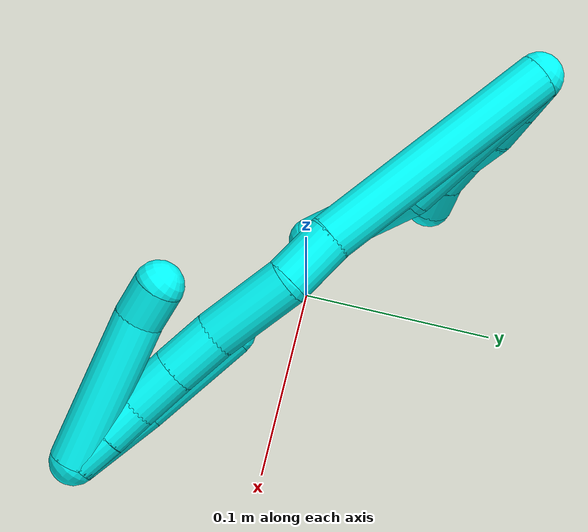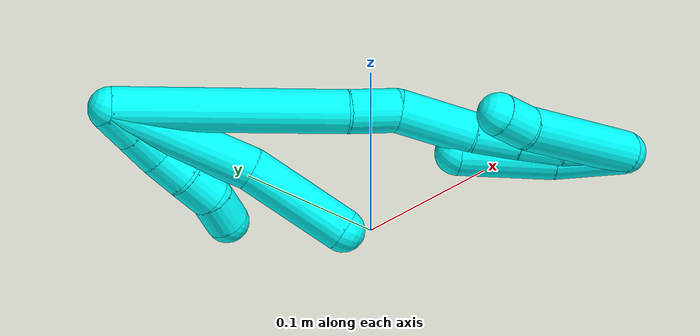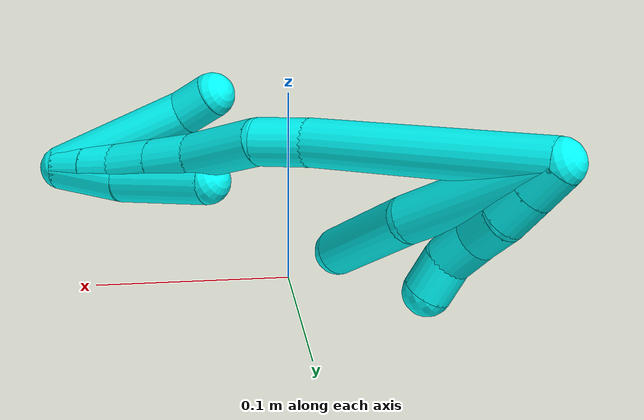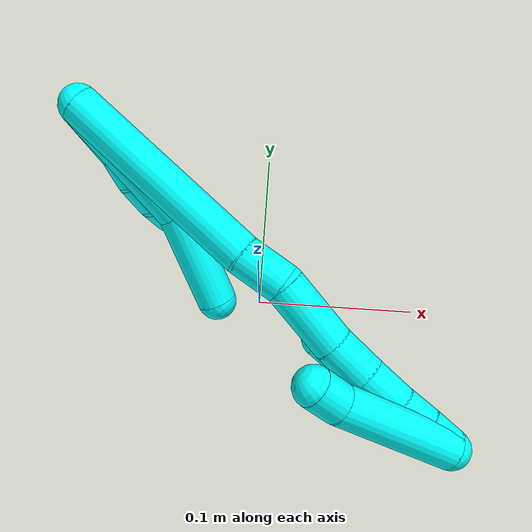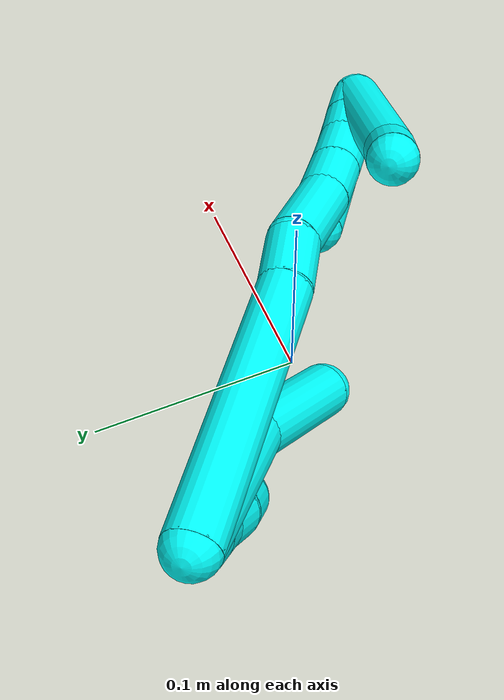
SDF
<sdf version="1.7">
 <world name="default">
  <model name="photoneo_s_sensor">
   <static>1</static>
   <pose>0 0 2 1.57079 1.57079 3.14159</pose>
   <link name="link">
    <inertial><mass>0.1</mass></inertial>
    <sensor name="sensor" type="depth">
     <update_rate>30</update_rate>
     <camera>
      <horizontal_fov>1.22</horizontal_fov>
      <image><width>1920</width><height>1200</height><format>B8G8R8</format></image>
      <clip><near>0.1</near><far>4</far></clip>
      <depth_camera><output>points</output></depth_camera>
     </camera>
     <plugin name="camera_plugin" filename="libgazebo_ros_depth_camera.so">
      <baseline>0.2</baseline>
      <alwaysOn>1</alwaysOn>
      <updateRate>0.0</updateRate>
      <cameraName>camera_ir</cameraName>
      <imageTopicName>/camera/color/image_raw</imageTopicName>
      <cameraInfoTopicName>/camera/color/camera_info</cameraInfoTopicName>
      <depthImageTopicName>/camera/depth/image_raw</depthImageTopicName>
      <depthImageCameraInfoTopicName>/camera/depth/camera_info</depthImageCameraInfoTopicName>
      <pointCloudTopicName>/camera/depth/points</pointCloudTopicName>
      <frameName>fr_optical</frameName>
      <pointCloudCutoff>0.1</pointCloudCutoff>
      <pointCloudCutoffMax>2.0</pointCloudCutoffMax>
      <distortionK1>0</distortionK1>
      <distortionK2>0</distortionK2>
      <distortionK3>0</distortionK3>
      <distortionT1>0</distortionT1>
      <distortionT2>0</distortionT2>
      <CxPrime>0</CxPrime>
      <Cx>0</Cx>
      <Cy>0</Cy>
      <focalLength>0</focalLength>
      <hackBaseline>0</hackBaseline>
     </plugin>
    </sensor>
   </link>
  </model>
  <model name="bin">
   <static>1</static>
   <link name="bottom">
    <collision name="collision-bottom">
     <pose>0 0 -0.01 0 -0 0</pose>
     <geometry><box><size>0.8 0.6 0.02</size></box></geometry>
     <surface>
      <friction><ode><mu>100</mu><mu2>100</mu2></ode></friction>
      <contact><collide_bitmask>65535</collide_bitmask></contact>
     </surface>
    </collision>
   </link>
   <link name="west_wall">
    <collision name="collision-west_wall">
     <pose>-0.41 0 0.1 0 -0 0</pose>
     <geometry><box><size>0.02 0.6 0.2</size></box></geometry>
     <surface>
      <friction><ode><mu>100</mu><mu2>100</mu2></ode></friction>
      <contact><collide_bitmask>65535</collide_bitmask></contact>
     </surface>
    </collision>
   </link>
   <link name="east_wall">
    <collision name="collision-east_wall">
     <pose>0.41 0 0.1 0 -0 0</pose>
     <geometry><box><size>0.02 0.6 0.2</size></box></geometry>
     <surface>
      <friction><ode><mu>100</mu><mu2>100</mu2></ode></friction>
      <contact><collide_bitmask>65535</collide_bitmask></contact>
     </surface>
    </collision>
   </link>
   <link name="south_wall">
    <collision name="collision-south_wall">
     <pose>0 -0.31 0.1 0 -0 0</pose>
     <geometry><box><size>0.8 0.02 0.2</size></box></geometry>
     <surface>
      <friction><ode><mu>100</mu><mu2>100</mu2></ode></friction>
      <contact><collide_bitmask>65535</collide_bitmask></contact>
     </surface>
    </collision>
   </link>
   <link name="north_wall">
    <collision name="collision-north_wall">
     <pose>0 0.31 0.1 0 -0 0</pose>
     <geometry><box><size>0.8 0.02 0.2</size></box></geometry>
     <surface>
      <friction><ode><mu>100</mu><mu2>100</mu2></ode></friction>
      <contact><collide_bitmask>65535</collide_bitmask></contact>
     </surface>
    </collision>
   </link>
  </model>
  <model name="3">
   <static>0</static>
   <link name="3">
    <collision name="collision-cylinder-e_1_2_8">
     <pose>-0.000261 -0.000157 -0.043616 3.13799 -0.005986 -2.05832</pose>
     <geometry><cylinder><radius>0.0125</radius><length>0.087234</length></cylinder></geometry>
     <surface>
      <friction><ode><mu>1.16</mu><mu2>1.16</mu2><slip1>0</slip1><slip2>0</slip2></ode></friction>
      <contact><ode><kp>1e+06</kp><kd>1</kd><max_vel>0</max_vel><min_depth>0.001</min_depth></ode></contact>
     </surface>
    </collision>
    <visual name="visual-cylinder-e_1_2_8">
     <pose>-0.000261 -0.000157 -0.043616 3.13799 -0.005986 -2.05832</pose>
     <geometry><cylinder><radius>0.0125</radius><length>0.087234</length></cylinder></geometry>
     <material><ambient>0.003922 1 0.996078 1</ambient></material>
    </visual>
    <collision name="collision-cylinder-e_2_8_6">
     <pose>-0.008716 -0.005567 -0.117068 2.9673 -0.264144 -1.97813</pose>
     <geometry><cylinder><radius>0.0125</radius><length>0.062766</length></cylinder></geometry>
     <surface>
      <friction><ode><mu>1.16</mu><mu2>1.16</mu2><slip1>0</slip1><slip2>0</slip2></ode></friction>
      <contact><ode><kp>1e+06</kp><kd>1</kd><max_vel>0</max_vel><min_depth>0.001</min_depth></ode></contact>
     </surface>
    </collision>
    <visual name="visual-cylinder-e_2_8_6">
     <pose>-0.008716 -0.005567 -0.117068 2.9673 -0.264144 -1.97813</pose>
     <geometry><cylinder><radius>0.0125</radius><length>0.062766</length></cylinder></geometry>
     <material><ambient>0.003922 1 0.996078 1</ambient></material>
    </visual>
    <collision name="collision-cylinder-e_1_2_9">
     <pose>-0.002553 0.002681 -0.00929 -2.86066 -0.258107 1.48513</pose>
     <geometry><cylinder><radius>0.0125</radius><length>0.02</length></cylinder></geometry>
     <surface>
      <friction><ode><mu>1.16</mu><mu2>1.16</mu2><slip1>0</slip1><slip2>0</slip2></ode></friction>
      <contact><ode><kp>1e+06</kp><kd>1</kd><max_vel>0</max_vel><min_depth>0.001</min_depth></ode></contact>
     </surface>
    </collision>
    <visual name="visual-cylinder-e_1_2_9">
     <pose>-0.002553 0.002681 -0.00929 -2.86066 -0.258107 1.48513</pose>
     <geometry><cylinder><radius>0.0125</radius><length>0.02</length></cylinder></geometry>
     <material><ambient>0.003922 1 0.996078 1</ambient></material>
    </visual>
    <collision name="collision-cylinder-e_2_9_10">
     <pose>-0.007636 0.008039 -0.027876 -2.8611 -0.255924 1.47817</pose>
     <geometry><cylinder><radius>0.0125</radius><length>0.02</length></cylinder></geometry>
     <surface>
      <friction><ode><mu>1.16</mu><mu2>1.16</mu2><slip1>0</slip1><slip2>0</slip2></ode></friction>
      <contact><ode><kp>1e+06</kp><kd>1</kd><max_vel>0</max_vel><min_depth>0.001</min_depth></ode></contact>
     </surface>
    </collision>
    <visual name="visual-cylinder-e_2_9_10">
     <pose>-0.007636 0.008039 -0.027876 -2.8611 -0.255924 1.47817</pose>
     <geometry><cylinder><radius>0.0125</radius><length>0.02</length></cylinder></geometry>
     <material><ambient>0.003922 1 0.996078 1</ambient></material>
    </visual>
    <collision name="collision-cylinder-e_3_10_11">
     <pose>-0.012956 0.011212 -0.046763 -3.09009 -0.282564 2.7833</pose>
     <geometry><cylinder><radius>0.0125</radius><length>0.02</length></cylinder></geometry>
     <surface>
      <friction><ode><mu>1.16</mu><mu2>1.16</mu2><slip1>0</slip1><slip2>0</slip2></ode></friction>
      <contact><ode><kp>1e+06</kp><kd>1</kd><max_vel>0</max_vel><min_depth>0.001</min_depth></ode></contact>
     </surface>
    </collision>
    <visual name="visual-cylinder-e_3_10_11">
     <pose>-0.012956 0.011212 -0.046763 -3.09009 -0.282564 2.7833</pose>
     <geometry><cylinder><radius>0.0125</radius><length>0.02</length></cylinder></geometry>
     <material><ambient>0.003922 1 0.996078 1</ambient></material>
    </visual>
    <collision name="collision-cylinder-e_4_11_12">
     <pose>-0.017662 0.013881 -0.065924 -2.91814 -0.192964 1.4236</pose>
     <geometry><cylinder><radius>0.0125</radius><length>0.02</length></cylinder></geometry>
     <surface>
      <friction><ode><mu>1.16</mu><mu2>1.16</mu2><slip1>0</slip1><slip2>0</slip2></ode></friction>
      <contact><ode><kp>1e+06</kp><kd>1</kd><max_vel>0</max_vel><min_depth>0.001</min_depth></ode></contact>
     </surface>
    </collision>
    <visual name="visual-cylinder-e_4_11_12">
     <pose>-0.017662 0.013881 -0.065924 -2.91814 -0.192964 1.4236</pose>
     <geometry><cylinder><radius>0.0125</radius><length>0.02</length></cylinder></geometry>
     <material><ambient>0.003922 1 0.996078 1</ambient></material>
    </visual>
    <collision name="collision-cylinder-e_5_12_5">
     <pose>-0.022597 0.021089 -0.083591 -2.58547 -0.306519 0.992032</pose>
     <geometry><cylinder><radius>0.0125</radius><length>0.02</length></cylinder></geometry>
     <surface>
      <friction><ode><mu>1.16</mu><mu2>1.16</mu2><slip1>0</slip1><slip2>0</slip2></ode></friction>
      <contact><ode><kp>1e+06</kp><kd>1</kd><max_vel>0</max_vel><min_depth>0.001</min_depth></ode></contact>
     </surface>
    </collision>
    <visual name="visual-cylinder-e_5_12_5">
     <pose>-0.022597 0.021089 -0.083591 -2.58547 -0.306519 0.992032</pose>
     <geometry><cylinder><radius>0.0125</radius><length>0.02</length></cylinder></geometry>
     <material><ambient>0.003922 1 0.996078 1</ambient></material>
    </visual>
    <collision name="collision-cylinder-e_1_2_13">
     <pose>0.020221 -0.017416 -0.060261 2.86024 0.311844 1.67503</pose>
     <geometry><cylinder><radius>0.0125</radius><length>0.131812</length></cylinder></geometry>
     <surface>
      <friction><ode><mu>1.16</mu><mu2>1.16</mu2><slip1>0</slip1><slip2>0</slip2></ode></friction>
      <contact><ode><kp>1e+06</kp><kd>1</kd><max_vel>0</max_vel><min_depth>0.001</min_depth></ode></contact>
     </surface>
    </collision>
    <visual name="visual-cylinder-e_1_2_13">
     <pose>0.020221 -0.017416 -0.060261 2.86024 0.311844 1.67503</pose>
     <geometry><cylinder><radius>0.0125</radius><length>0.131812</length></cylinder></geometry>
     <material><ambient>0.003922 1 0.996078 1</ambient></material>
    </visual>
    <collision name="collision-cylinder-e_2_13_14">
     <pose>0.045927 -0.037015 -0.13389 2.9798 0.384738 2.35274</pose>
     <geometry><cylinder><radius>0.0125</radius><length>0.029229</length></cylinder></geometry>
     <surface>
      <friction><ode><mu>1.16</mu><mu2>1.16</mu2><slip1>0</slip1><slip2>0</slip2></ode></friction>
      <contact><ode><kp>1e+06</kp><kd>1</kd><max_vel>0</max_vel><min_depth>0.001</min_depth></ode></contact>
     </surface>
    </collision>
    <visual name="visual-cylinder-e_2_13_14">
     <pose>0.045927 -0.037015 -0.13389 2.9798 0.384738 2.35274</pose>
     <geometry><cylinder><radius>0.0125</radius><length>0.029229</length></cylinder></geometry>
     <material><ambient>0.003922 1 0.996078 1</ambient></material>
    </visual>
    <collision name="collision-cylinder-e_3_14_15">
     <pose>0.052751 -0.042608 -0.169632 2.9903 0.059124 0.743964</pose>
     <geometry><cylinder><radius>0.0125</radius><length>0.045341</length></cylinder></geometry>
     <surface>
      <friction><ode><mu>1.16</mu><mu2>1.16</mu2><slip1>0</slip1><slip2>0</slip2></ode></friction>
      <contact><ode><kp>1e+06</kp><kd>1</kd><max_vel>0</max_vel><min_depth>0.001</min_depth></ode></contact>
     </surface>
    </collision>
    <visual name="visual-cylinder-e_3_14_15">
     <pose>0.052751 -0.042608 -0.169632 2.9903 0.059124 0.743964</pose>
     <geometry><cylinder><radius>0.0125</radius><length>0.045341</length></cylinder></geometry>
     <material><ambient>0.003922 1 0.996078 1</ambient></material>
    </visual>
    <collision name="collision-cylinder-e_4_15_16">
     <pose>0.056619 -0.047892 -0.205237 3.00098 0.186987 1.85326</pose>
     <geometry><cylinder><radius>0.0125</radius><length>0.027203</length></cylinder></geometry>
     <surface>
      <friction><ode><mu>1.16</mu><mu2>1.16</mu2><slip1>0</slip1><slip2>0</slip2></ode></friction>
      <contact><ode><kp>1e+06</kp><kd>1</kd><max_vel>0</max_vel><min_depth>0.001</min_depth></ode></contact>
     </surface>
    </collision>
    <visual name="visual-cylinder-e_4_15_16">
     <pose>0.056619 -0.047892 -0.205237 3.00098 0.186987 1.85326</pose>
     <geometry><cylinder><radius>0.0125</radius><length>0.027203</length></cylinder></geometry>
     <material><ambient>0.003922 1 0.996078 1</ambient></material>
    </visual>
    <collision name="collision-cylinder-e_5_16_17">
     <pose>0.0619 -0.051437 -0.231152 3.01055 0.211886 2.03593</pose>
     <geometry><cylinder><radius>0.0125</radius><length>0.02617</length></cylinder></geometry>
     <surface>
      <friction><ode><mu>1.16</mu><mu2>1.16</mu2><slip1>0</slip1><slip2>0</slip2></ode></friction>
      <contact><ode><kp>1e+06</kp><kd>1</kd><max_vel>0</max_vel><min_depth>0.001</min_depth></ode></contact>
     </surface>
    </collision>
    <visual name="visual-cylinder-e_5_16_17">
     <pose>0.0619 -0.051437 -0.231152 3.01055 0.211886 2.03593</pose>
     <geometry><cylinder><radius>0.0125</radius><length>0.02617</length></cylinder></geometry>
     <material><ambient>0.003922 1 0.996078 1</ambient></material>
    </visual>
    <collision name="collision-cylinder-e_6_17_18">
     <pose>0.067616 -0.054666 -0.253338 2.97908 0.298613 2.1492</pose>
     <geometry><cylinder><radius>0.0125</radius><length>0.020152</length></cylinder></geometry>
     <surface>
      <friction><ode><mu>1.16</mu><mu2>1.16</mu2><slip1>0</slip1><slip2>0</slip2></ode></friction>
      <contact><ode><kp>1e+06</kp><kd>1</kd><max_vel>0</max_vel><min_depth>0.001</min_depth></ode></contact>
     </surface>
    </collision>
    <visual name="visual-cylinder-e_6_17_18">
     <pose>0.067616 -0.054666 -0.253338 2.97908 0.298613 2.1492</pose>
     <geometry><cylinder><radius>0.0125</radius><length>0.020152</length></cylinder></geometry>
     <material><ambient>0.003922 1 0.996078 1</ambient></material>
    </visual>
    <collision name="collision-cylinder-e_7_18_1">
     <pose>0.073347 -0.058052 -0.272325 2.95128 0.278953 1.94741</pose>
     <geometry><cylinder><radius>0.0125</radius><length>0.020094</length></cylinder></geometry>
     <surface>
      <friction><ode><mu>1.16</mu><mu2>1.16</mu2><slip1>0</slip1><slip2>0</slip2></ode></friction>
      <contact><ode><kp>1e+06</kp><kd>1</kd><max_vel>0</max_vel><min_depth>0.001</min_depth></ode></contact>
     </surface>
    </collision>
    <visual name="visual-cylinder-e_7_18_1">
     <pose>0.073347 -0.058052 -0.272325 2.95128 0.278953 1.94741</pose>
     <geometry><cylinder><radius>0.0125</radius><length>0.020094</length></cylinder></geometry>
     <material><ambient>0.003922 1 0.996078 1</ambient></material>
    </visual>
    <collision name="collision-cylinder-e_1_1_19">
     <pose>0.068051 -0.05345 -0.263 -0.329316 -0.385288 0.064802</pose>
     <geometry><cylinder><radius>0.0125</radius><length>0.0429</length></cylinder></geometry>
     <surface>
      <friction><ode><mu>1.16</mu><mu2>1.16</mu2><slip1>0</slip1><slip2>0</slip2></ode></friction>
      <contact><ode><kp>1e+06</kp><kd>1</kd><max_vel>0</max_vel><min_depth>0.001</min_depth></ode></contact>
     </surface>
    </collision>
    <visual name="visual-cylinder-e_1_1_19">
     <pose>0.068051 -0.05345 -0.263 -0.329316 -0.385288 0.064802</pose>
     <geometry><cylinder><radius>0.0125</radius><length>0.0429</length></cylinder></geometry>
     <material><ambient>0.003922 1 0.996078 1</ambient></material>
    </visual>
    <collision name="collision-cylinder-e_2_19_4">
     <pose>0.051702 -0.041306 -0.217475 -0.210794 -0.294541 0.031384</pose>
     <geometry><cylinder><radius>0.0125</radius><length>0.0571</length></cylinder></geometry>
     <surface>
      <friction><ode><mu>1.16</mu><mu2>1.16</mu2><slip1>0</slip1><slip2>0</slip2></ode></friction>
      <contact><ode><kp>1e+06</kp><kd>1</kd><max_vel>0</max_vel><min_depth>0.001</min_depth></ode></contact>
     </surface>
    </collision>
    <visual name="visual-cylinder-e_2_19_4">
     <pose>0.051702 -0.041306 -0.217475 -0.210794 -0.294541 0.031384</pose>
     <geometry><cylinder><radius>0.0125</radius><length>0.0571</length></cylinder></geometry>
     <material><ambient>0.003922 1 0.996078 1</ambient></material>
    </visual>
    <collision name="collision-cylinder-e_1_1_20">
     <pose>0.065824 -0.070738 -0.244717 0.284812 -0.26019 -0.037513</pose>
     <geometry><cylinder><radius>0.0125</radius><length>0.07999</length></cylinder></geometry>
     <surface>
      <friction><ode><mu>1.16</mu><mu2>1.16</mu2><slip1>0</slip1><slip2>0</slip2></ode></friction>
      <contact><ode><kp>1e+06</kp><kd>1</kd><max_vel>0</max_vel><min_depth>0.001</min_depth></ode></contact>
     </surface>
    </collision>
    <visual name="visual-cylinder-e_1_1_20">
     <pose>0.065824 -0.070738 -0.244717 0.284812 -0.26019 -0.037513</pose>
     <geometry><cylinder><radius>0.0125</radius><length>0.07999</length></cylinder></geometry>
     <material><ambient>0.003922 1 0.996078 1</ambient></material>
    </visual>
    <collision name="collision-cylinder-e_2_20_3">
     <pose>0.054882 -0.083846 -0.197898 0.22714 -0.065248 -0.007445</pose>
     <geometry><cylinder><radius>0.0125</radius><length>0.02001</length></cylinder></geometry>
     <surface>
      <friction><ode><mu>1.16</mu><mu2>1.16</mu2><slip1>0</slip1><slip2>0</slip2></ode></friction>
      <contact><ode><kp>1e+06</kp><kd>1</kd><max_vel>0</max_vel><min_depth>0.001</min_depth></ode></contact>
     </surface>
    </collision>
    <visual name="visual-cylinder-e_2_20_3">
     <pose>0.054882 -0.083846 -0.197898 0.22714 -0.065248 -0.007445</pose>
     <geometry><cylinder><radius>0.0125</radius><length>0.02001</length></cylinder></geometry>
     <material><ambient>0.003922 1 0.996078 1</ambient></material>
    </visual>
    <collision name="collision-sphere-3">
     <pose>0.05423 -0.086094 -0.188171 0 -0 0</pose>
     <geometry><sphere><radius>0.0125</radius></sphere></geometry>
     <surface>
      <friction><ode><mu>1.16</mu><mu2>1.16</mu2><slip1>0</slip1><slip2>0</slip2></ode></friction>
      <contact><ode><kp>1e+06</kp><kd>1</kd><max_vel>0</max_vel><min_depth>0.001</min_depth></ode></contact>
     </surface>
    </collision>
    <visual name="visual-sphere-3">
     <pose>0.05423 -0.086094 -0.188171 0 -0 0</pose>
     <geometry><sphere><radius>0.0125</radius></sphere></geometry>
     <material><ambient>0.003922 1 0.996078 1</ambient></material>
    </visual>
    <collision name="collision-sphere-20">
     <pose>0.055534 -0.081597 -0.207626 0 -0 0</pose>
     <geometry><sphere><radius>0.0125</radius></sphere></geometry>
     <surface>
      <friction><ode><mu>1.16</mu><mu2>1.16</mu2><slip1>0</slip1><slip2>0</slip2></ode></friction>
      <contact><ode><kp>1e+06</kp><kd>1</kd><max_vel>0</max_vel><min_depth>0.001</min_depth></ode></contact>
     </surface>
    </collision>
    <visual name="visual-sphere-20">
     <pose>0.055534 -0.081597 -0.207626 0 -0 0</pose>
     <geometry><sphere><radius>0.0125</radius></sphere></geometry>
     <material><ambient>0.003922 1 0.996078 1</ambient></material>
    </visual>
    <collision name="collision-sphere-4">
     <pose>0.043414 -0.035589 -0.190759 0 -0 0</pose>
     <geometry><sphere><radius>0.0125</radius></sphere></geometry>
     <surface>
      <friction><ode><mu>1.16</mu><mu2>1.16</mu2><slip1>0</slip1><slip2>0</slip2></ode></friction>
      <contact><ode><kp>1e+06</kp><kd>1</kd><max_vel>0</max_vel><min_depth>0.001</min_depth></ode></contact>
     </surface>
    </collision>
    <visual name="visual-sphere-4">
     <pose>0.043414 -0.035589 -0.190759 0 -0 0</pose>
     <geometry><sphere><radius>0.0125</radius></sphere></geometry>
     <material><ambient>0.003922 1 0.996078 1</ambient></material>
    </visual>
    <collision name="collision-sphere-11">
     <pose>-0.015744 0.011706 -0.056353 0 -0 0</pose>
     <geometry><sphere><radius>0.0125</radius></sphere></geometry>
     <surface>
      <friction><ode><mu>1.16</mu><mu2>1.16</mu2><slip1>0</slip1><slip2>0</slip2></ode></friction>
      <contact><ode><kp>1e+06</kp><kd>1</kd><max_vel>0</max_vel><min_depth>0.001</min_depth></ode></contact>
     </surface>
    </collision>
    <visual name="visual-sphere-11">
     <pose>-0.015744 0.011706 -0.056353 0 -0 0</pose>
     <geometry><sphere><radius>0.0125</radius></sphere></geometry>
     <material><ambient>0.003922 1 0.996078 1</ambient></material>
    </visual>
    <collision name="collision-sphere-10">
     <pose>-0.010168 0.010718 -0.037172 0 -0 0</pose>
     <geometry><sphere><radius>0.0125</radius></sphere></geometry>
     <surface>
      <friction><ode><mu>1.16</mu><mu2>1.16</mu2><slip1>0</slip1><slip2>0</slip2></ode></friction>
      <contact><ode><kp>1e+06</kp><kd>1</kd><max_vel>0</max_vel><min_depth>0.001</min_depth></ode></contact>
     </surface>
    </collision>
    <visual name="visual-sphere-10">
     <pose>-0.010168 0.010718 -0.037172 0 -0 0</pose>
     <geometry><sphere><radius>0.0125</radius></sphere></geometry>
     <material><ambient>0.003922 1 0.996078 1</ambient></material>
    </visual>
    <collision name="collision-sphere-6">
     <pose>-0.016909 -0.010821 -0.146903 0 -0 0</pose>
     <geometry><sphere><radius>0.0125</radius></sphere></geometry>
     <surface>
      <friction><ode><mu>1.16</mu><mu2>1.16</mu2><slip1>0</slip1><slip2>0</slip2></ode></friction>
      <contact><ode><kp>1e+06</kp><kd>1</kd><max_vel>0</max_vel><min_depth>0.001</min_depth></ode></contact>
     </surface>
    </collision>
    <visual name="visual-sphere-6">
     <pose>-0.016909 -0.010821 -0.146903 0 -0 0</pose>
     <geometry><sphere><radius>0.0125</radius></sphere></geometry>
     <material><ambient>0.003922 1 0.996078 1</ambient></material>
    </visual>
    <collision name="collision-sphere-9">
     <pose>-0.005105 0.005361 -0.018579 0 -0 0</pose>
     <geometry><sphere><radius>0.0125</radius></sphere></geometry>
     <surface>
      <friction><ode><mu>1.16</mu><mu2>1.16</mu2><slip1>0</slip1><slip2>0</slip2></ode></friction>
      <contact><ode><kp>1e+06</kp><kd>1</kd><max_vel>0</max_vel><min_depth>0.001</min_depth></ode></contact>
     </surface>
    </collision>
    <visual name="visual-sphere-9">
     <pose>-0.005105 0.005361 -0.018579 0 -0 0</pose>
     <geometry><sphere><radius>0.0125</radius></sphere></geometry>
     <material><ambient>0.003922 1 0.996078 1</ambient></material>
    </visual>
    <collision name="collision-sphere-2">
     <geometry><sphere><radius>0.0125</radius></sphere></geometry>
     <surface>
      <friction><ode><mu>1.16</mu><mu2>1.16</mu2><slip1>0</slip1><slip2>0</slip2></ode></friction>
      <contact><ode><kp>1e+06</kp><kd>1</kd><max_vel>0</max_vel><min_depth>0.001</min_depth></ode></contact>
     </surface>
    </collision>
    <visual name="visual-sphere-2">
     <geometry><sphere><radius>0.0125</radius></sphere></geometry>
     <material><ambient>0.003922 1 0.996078 1</ambient></material>
    </visual>
    <collision name="collision-sphere-19">
     <pose>0.05999 -0.047022 -0.244191 0 -0 0</pose>
     <geometry><sphere><radius>0.0125</radius></sphere></geometry>
     <surface>
      <friction><ode><mu>1.16</mu><mu2>1.16</mu2><slip1>0</slip1><slip2>0</slip2></ode></friction>
      <contact><ode><kp>1e+06</kp><kd>1</kd><max_vel>0</max_vel><min_depth>0.001</min_depth></ode></contact>
     </surface>
    </collision>
    <visual name="visual-sphere-19">
     <pose>0.05999 -0.047022 -0.244191 0 -0 0</pose>
     <geometry><sphere><radius>0.0125</radius></sphere></geometry>
     <material><ambient>0.003922 1 0.996078 1</ambient></material>
    </visual>
    <collision name="collision-sphere-8">
     <pose>-0.000522 -0.000314 -0.087232 0 -0 0</pose>
     <geometry><sphere><radius>0.0125</radius></sphere></geometry>
     <surface>
      <friction><ode><mu>1.16</mu><mu2>1.16</mu2><slip1>0</slip1><slip2>0</slip2></ode></friction>
      <contact><ode><kp>1e+06</kp><kd>1</kd><max_vel>0</max_vel><min_depth>0.001</min_depth></ode></contact>
     </surface>
    </collision>
    <visual name="visual-sphere-8">
     <pose>-0.000522 -0.000314 -0.087232 0 -0 0</pose>
     <geometry><sphere><radius>0.0125</radius></sphere></geometry>
     <material><ambient>0.003922 1 0.996078 1</ambient></material>
    </visual>
    <collision name="collision-sphere-12">
     <pose>-0.01958 0.016056 -0.075494 0 -0 0</pose>
     <geometry><sphere><radius>0.0125</radius></sphere></geometry>
     <surface>
      <friction><ode><mu>1.16</mu><mu2>1.16</mu2><slip1>0</slip1><slip2>0</slip2></ode></friction>
      <contact><ode><kp>1e+06</kp><kd>1</kd><max_vel>0</max_vel><min_depth>0.001</min_depth></ode></contact>
     </surface>
    </collision>
    <visual name="visual-sphere-12">
     <pose>-0.01958 0.016056 -0.075494 0 -0 0</pose>
     <geometry><sphere><radius>0.0125</radius></sphere></geometry>
     <material><ambient>0.003922 1 0.996078 1</ambient></material>
    </visual>
    <collision name="collision-sphere-5">
     <pose>-0.025614 0.026122 -0.091689 0 -0 0</pose>
     <geometry><sphere><radius>0.0125</radius></sphere></geometry>
     <surface>
      <friction><ode><mu>1.16</mu><mu2>1.16</mu2><slip1>0</slip1><slip2>0</slip2></ode></friction>
      <contact><ode><kp>1e+06</kp><kd>1</kd><max_vel>0</max_vel><min_depth>0.001</min_depth></ode></contact>
     </surface>
    </collision>
    <visual name="visual-sphere-5">
     <pose>-0.025614 0.026122 -0.091689 0 -0 0</pose>
     <geometry><sphere><radius>0.0125</radius></sphere></geometry>
     <material><ambient>0.003922 1 0.996078 1</ambient></material>
    </visual>
    <collision name="collision-sphere-13">
     <pose>0.040442 -0.034833 -0.120521 0 -0 0</pose>
     <geometry><sphere><radius>0.0125</radius></sphere></geometry>
     <surface>
      <friction><ode><mu>1.16</mu><mu2>1.16</mu2><slip1>0</slip1><slip2>0</slip2></ode></friction>
      <contact><ode><kp>1e+06</kp><kd>1</kd><max_vel>0</max_vel><min_depth>0.001</min_depth></ode></contact>
     </surface>
    </collision>
    <visual name="visual-sphere-13">
     <pose>0.040442 -0.034833 -0.120521 0 -0 0</pose>
     <geometry><sphere><radius>0.0125</radius></sphere></geometry>
     <material><ambient>0.003922 1 0.996078 1</ambient></material>
    </visual>
    <collision name="collision-sphere-14">
     <pose>0.051412 -0.039197 -0.147259 0 -0 0</pose>
     <geometry><sphere><radius>0.0125</radius></sphere></geometry>
     <surface>
      <friction><ode><mu>1.16</mu><mu2>1.16</mu2><slip1>0</slip1><slip2>0</slip2></ode></friction>
      <contact><ode><kp>1e+06</kp><kd>1</kd><max_vel>0</max_vel><min_depth>0.001</min_depth></ode></contact>
     </surface>
    </collision>
    <visual name="visual-sphere-14">
     <pose>0.051412 -0.039197 -0.147259 0 -0 0</pose>
     <geometry><sphere><radius>0.0125</radius></sphere></geometry>
     <material><ambient>0.003922 1 0.996078 1</ambient></material>
    </visual>
    <collision name="collision-sphere-15">
     <pose>0.054091 -0.046019 -0.192004 0 -0 0</pose>
     <geometry><sphere><radius>0.0125</radius></sphere></geometry>
     <surface>
      <friction><ode><mu>1.16</mu><mu2>1.16</mu2><slip1>0</slip1><slip2>0</slip2></ode></friction>
      <contact><ode><kp>1e+06</kp><kd>1</kd><max_vel>0</max_vel><min_depth>0.001</min_depth></ode></contact>
     </surface>
    </collision>
    <visual name="visual-sphere-15">
     <pose>0.054091 -0.046019 -0.192004 0 -0 0</pose>
     <geometry><sphere><radius>0.0125</radius></sphere></geometry>
     <material><ambient>0.003922 1 0.996078 1</ambient></material>
    </visual>
    <collision name="collision-sphere-16">
     <pose>0.059148 -0.049765 -0.218469 0 -0 0</pose>
     <geometry><sphere><radius>0.0125</radius></sphere></geometry>
     <surface>
      <friction><ode><mu>1.16</mu><mu2>1.16</mu2><slip1>0</slip1><slip2>0</slip2></ode></friction>
      <contact><ode><kp>1e+06</kp><kd>1</kd><max_vel>0</max_vel><min_depth>0.001</min_depth></ode></contact>
     </surface>
    </collision>
    <visual name="visual-sphere-16">
     <pose>0.059148 -0.049765 -0.218469 0 -0 0</pose>
     <geometry><sphere><radius>0.0125</radius></sphere></geometry>
     <material><ambient>0.003922 1 0.996078 1</ambient></material>
    </visual>
    <collision name="collision-sphere-17">
     <pose>0.064652 -0.053108 -0.243835 0 -0 0</pose>
     <geometry><sphere><radius>0.0125</radius></sphere></geometry>
     <surface>
      <friction><ode><mu>1.16</mu><mu2>1.16</mu2><slip1>0</slip1><slip2>0</slip2></ode></friction>
      <contact><ode><kp>1e+06</kp><kd>1</kd><max_vel>0</max_vel><min_depth>0.001</min_depth></ode></contact>
     </surface>
    </collision>
    <visual name="visual-sphere-17">
     <pose>0.064652 -0.053108 -0.243835 0 -0 0</pose>
     <geometry><sphere><radius>0.0125</radius></sphere></geometry>
     <material><ambient>0.003922 1 0.996078 1</ambient></material>
    </visual>
    <collision name="collision-sphere-18">
     <pose>0.07058 -0.056224 -0.262841 0 -0 0</pose>
     <geometry><sphere><radius>0.0125</radius></sphere></geometry>
     <surface>
      <friction><ode><mu>1.16</mu><mu2>1.16</mu2><slip1>0</slip1><slip2>0</slip2></ode></friction>
      <contact><ode><kp>1e+06</kp><kd>1</kd><max_vel>0</max_vel><min_depth>0.001</min_depth></ode></contact>
     </surface>
    </collision>
    <visual name="visual-sphere-18">
     <pose>0.07058 -0.056224 -0.262841 0 -0 0</pose>
     <geometry><sphere><radius>0.0125</radius></sphere></geometry>
     <material><ambient>0.003922 1 0.996078 1</ambient></material>
    </visual>
    <collision name="collision-sphere-1">
     <pose>0.076113 -0.059879 -0.281809 0 -0 0</pose>
     <geometry><sphere><radius>0.0125</radius></sphere></geometry>
     <surface>
      <friction><ode><mu>1.16</mu><mu2>1.16</mu2><slip1>0</slip1><slip2>0</slip2></ode></friction>
      <contact><ode><kp>1e+06</kp><kd>1</kd><max_vel>0</max_vel><min_depth>0.001</min_depth></ode></contact>
     </surface>
    </collision>
    <visual name="visual-sphere-1">
     <pose>0.076113 -0.059879 -0.281809 0 -0 0</pose>
     <geometry><sphere><radius>0.0125</radius></sphere></geometry>
     <material><ambient>0.003922 1 0.996078 1</ambient></material>
    </visual>
    <inertial>
     <pose>0.030391 -0.028586 -0.139752 0 -0 0</pose>
     <mass>0.75</mass>
     <inertia><ixx>0.000149</ixx><ixy>0</ixy><ixz>0</ixz><iyy>0.000275</iyy><iyz>0</iyz><izz>2e-06</izz></inertia>
    </inertial>
   </link>
   <pose>-0.112241 0.091358 0.088099 -0.882867 -0.704391 0.395823</pose>
  </model>
 </world>
</sdf>
